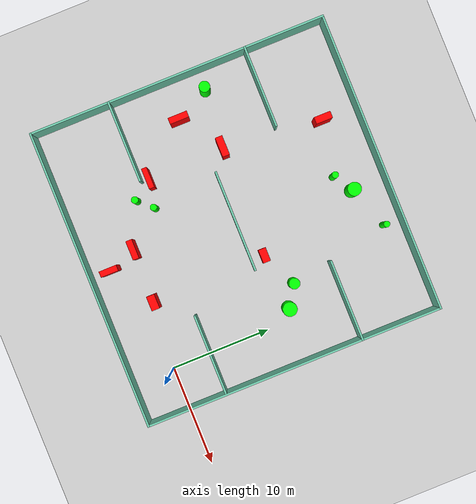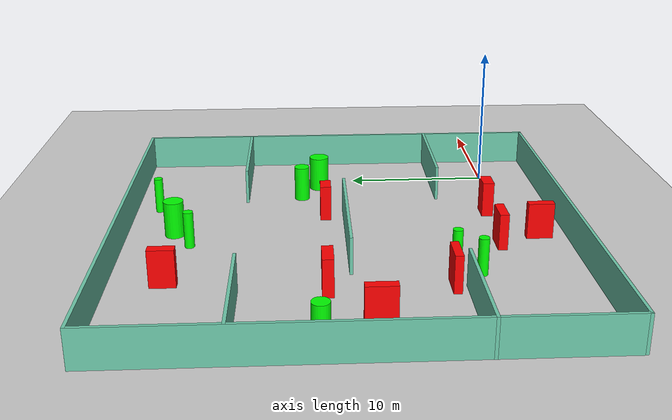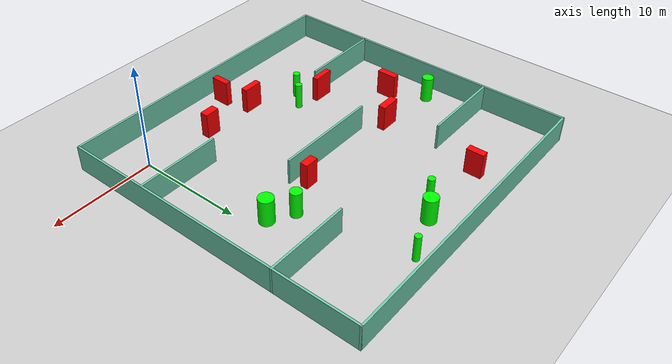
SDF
<sdf version="1.7">
 <world name="default">
  <light name="sun" type="directional">
   <pose>0 0 10 0 -0 0</pose>
   <diffuse>0.8 0.8 0.8 1</diffuse>
   <specular>0.2 0.2 0.2 1</specular>
   <attenuation>
    <range>1000</range>
    <constant>0.9</constant>
    <linear>0.01</linear>
    <quadratic>0.001</quadratic>
   </attenuation>
   <direction>-0.5 0.1 -0.9</direction>
   <spot><inner_angle>0</inner_angle><outer_angle>0</outer_angle><falloff>0</falloff></spot>
  </light>
  <model name="ground_plane">
   <static>1</static>
   <link name="link">
    <collision name="collision">
     <geometry><plane><normal>0 0 1</normal><size>100 100</size></plane></geometry>
     <surface>
      <contact><collide_bitmask>65535</collide_bitmask></contact>
      <friction><ode><mu>100</mu><mu2>50</mu2></ode></friction>
     </surface>
    </collision>
    <visual name="visual">
     <cast_shadows>0</cast_shadows>
     <geometry><plane><normal>0 0 1</normal><size>100 100</size></plane></geometry>
     <material>
      <script><uri>file://media/materials/scripts/gazebo.material</uri><name>Gazebo/Grey</name></script>
     </material>
    </visual>
   </link>
  </model>
  <gravity>0 0 -9.8</gravity>
  <magnetic_field>6e-06 2.3e-05 -4.2e-05</magnetic_field>
  <atmosphere type="adiabatic"/>
  <physics type="ode">
   <max_step_size>0.001</max_step_size>
   <real_time_factor>1</real_time_factor>
   <real_time_update_rate>1000</real_time_update_rate>
  </physics>
  <scene><ambient>0.4 0.4 0.4 1</ambient><background>0.7 0.7 0.7 1</background><shadows>1</shadows></scene>
  <spherical_coordinates>
   <surface_model>EARTH_WGS84</surface_model>
   <latitude_deg>0</latitude_deg>
   <longitude_deg>0</longitude_deg>
   <elevation>0</elevation>
   <heading_deg>0</heading_deg>
  </spherical_coordinates>
  <model name="my_base_walls">
   <link name="Wall_10">
    <collision name="Wall_10_Collision">
     <geometry><box><size>8.2 0.2 2.5</size></box></geometry>
     <pose>0 0 1.25 0 -0 0</pose>
    </collision>
    <visual name="Wall_10_Visual">
     <pose>0 0 1.25 0 -0 0</pose>
     <geometry><box><size>8.2 0.2 2.5</size></box></geometry>
     <material>
      <script><uri>file://media/materials/scripts/gazebo.material</uri><name>Gazebo/Grey</name></script>
      <ambient>0.435294 0.796078 0.67451 1</ambient>
     </material>
     <meta><layer>0</layer></meta>
    </visual>
    <pose>-11 -7 0 0 -0 0</pose>
   </link>
   <link name="Wall_12">
    <collision name="Wall_12_Collision">
     <geometry><box><size>8.2 0.2 2.5</size></box></geometry>
     <pose>0 0 1.25 0 -0 0</pose>
    </collision>
    <visual name="Wall_12_Visual">
     <pose>0 0 1.25 0 -0 0</pose>
     <geometry><box><size>8.2 0.2 2.5</size></box></geometry>
     <material>
      <script><uri>file://media/materials/scripts/gazebo.material</uri><name>Gazebo/Grey</name></script>
      <ambient>0.435294 0.796078 0.67451 1</ambient>
     </material>
     <meta><layer>0</layer></meta>
    </visual>
    <pose>-11 7 0 0 -0 0</pose>
   </link>
   <link name="Wall_14">
    <collision name="Wall_14_Collision">
     <geometry><box><size>8.2 0.2 2.5</size></box></geometry>
     <pose>0 0 1.25 0 -0 0</pose>
    </collision>
    <visual name="Wall_14_Visual">
     <pose>0 0 1.25 0 -0 0</pose>
     <geometry><box><size>8.2 0.2 2.5</size></box></geometry>
     <material>
      <script><uri>file://media/materials/scripts/gazebo.material</uri><name>Gazebo/Grey</name></script>
      <ambient>0.435294 0.796078 0.67451 1</ambient>
     </material>
     <meta><layer>0</layer></meta>
    </visual>
    <pose>11 7 0 0 -0 3.14159</pose>
   </link>
   <link name="Wall_16">
    <collision name="Wall_16_Collision">
     <geometry><box><size>10.2 0.2 2.5</size></box></geometry>
     <pose>0 0 1.25 0 -0 0</pose>
    </collision>
    <visual name="Wall_16_Visual">
     <pose>0 0 1.25 0 -0 0</pose>
     <geometry><box><size>10.2 0.2 2.5</size></box></geometry>
     <material>
      <script><uri>file://media/materials/scripts/gazebo.material</uri><name>Gazebo/Grey</name></script>
      <ambient>0.435294 0.796078 0.67451 1</ambient>
     </material>
     <meta><layer>0</layer></meta>
    </visual>
    <pose>0 0 0 0 -0 3.14159</pose>
   </link>
   <link name="Wall_2">
    <collision name="Wall_2_Collision">
     <geometry><box><size>30.2 0.2 2.5</size></box></geometry>
     <pose>0 0 1.25 0 -0 0</pose>
    </collision>
    <visual name="Wall_2_Visual">
     <pose>0 0 1.25 0 -0 0</pose>
     <geometry><box><size>30.2 0.2 2.5</size></box></geometry>
     <material>
      <script><uri>file://media/materials/scripts/gazebo.material</uri><name>Gazebo/Grey</name></script>
      <ambient>0.435294 0.796078 0.67451 1</ambient>
     </material>
     <meta><layer>0</layer></meta>
    </visual>
    <pose>0 -15 0 0 -0 3.14159</pose>
   </link>
   <link name="Wall_3">
    <collision name="Wall_3_Collision">
     <geometry><box><size>30.2 0.2 2.5</size></box></geometry>
     <pose>0 0 1.25 0 -0 0</pose>
    </collision>
    <visual name="Wall_3_Visual">
     <pose>0 0 1.25 0 -0 0</pose>
     <geometry><box><size>30.2 0.2 2.5</size></box></geometry>
     <material>
      <script><uri>file://media/materials/scripts/gazebo.material</uri><name>Gazebo/Grey</name></script>
      <ambient>0.435294 0.796078 0.67451 1</ambient>
     </material>
     <meta><layer>0</layer></meta>
    </visual>
    <pose>-15 0 0 0 -0 1.5708</pose>
   </link>
   <link name="Wall_4">
    <collision name="Wall_4_Collision">
     <geometry><box><size>30.2 0.2 2.5</size></box></geometry>
     <pose>0 0 1.25 0 -0 0</pose>
    </collision>
    <visual name="Wall_4_Visual">
     <pose>0 0 1.25 0 -0 0</pose>
     <geometry><box><size>30.2 0.2 2.5</size></box></geometry>
     <material>
      <script><uri>file://media/materials/scripts/gazebo.material</uri><name>Gazebo/Grey</name></script>
      <ambient>0.435294 0.796078 0.67451 1</ambient>
     </material>
     <meta><layer>0</layer></meta>
    </visual>
    <pose>0 15 0 0 -0 0</pose>
   </link>
   <link name="Wall_6">
    <collision name="Wall_6_Collision">
     <geometry><box><size>30.2 0.2 2.5</size></box></geometry>
     <pose>0 0 1.25 0 -0 0</pose>
    </collision>
    <visual name="Wall_6_Visual">
     <pose>0 0 1.25 0 -0 0</pose>
     <geometry><box><size>30.2 0.2 2.5</size></box></geometry>
     <material>
      <script><uri>file://media/materials/scripts/gazebo.material</uri><name>Gazebo/Grey</name></script>
      <ambient>0.435294 0.796078 0.67451 1</ambient>
     </material>
     <meta><layer>0</layer></meta>
    </visual>
    <pose>15 0 0 0 -0 1.5708</pose>
   </link>
   <link name="Wall_8">
    <collision name="Wall_8_Collision">
     <geometry><box><size>8.2 0.2 2.5</size></box></geometry>
     <pose>0 0 1.25 0 -0 0</pose>
    </collision>
    <visual name="Wall_8_Visual">
     <pose>0 0 1.25 0 -0 0</pose>
     <geometry><box><size>8.2 0.2 2.5</size></box></geometry>
     <material>
      <script><uri>file://media/materials/scripts/gazebo.material</uri><name>Gazebo/Grey</name></script>
      <ambient>0.435294 0.796078 0.67451 1</ambient>
     </material>
     <meta><layer>0</layer></meta>
    </visual>
    <pose>11 -7 0 0 -0 3.14159</pose>
   </link>
   <static>1</static>
   <pose>-11 11 0 0 -0 0</pose>
  </model>
  <model name="cylinder1">
   <static>1</static>
   <link name="link">
    <inertial>
     <mass>1</mass>
     <inertia><ixx>0.5</ixx><ixy>0</ixy><ixz>0</ixz><iyy>0.5</iyy><iyz>0</iyz><izz>1</izz></inertia>
    </inertial>
    <collision name="collision">
     <geometry><cylinder><radius>0.3329792738780064</radius><length>2.5</length></cylinder></geometry>
    </collision>
    <visual name="visual">
     <geometry><cylinder><radius>0.3329792738780064</radius><length>2.5</length></cylinder></geometry>
     <material>
      <ambient>0 1 0 1</ambient>
      <diffuse>0 1 0 1</diffuse>
      <specular>0.1 0.1 0.1 1</specular>
      <emissive>0 0 0 0</emissive>
     </material>
    </visual>
   </link>
   <pose>-11.517632368103914 21.45031481527162 1.25 0 0 0</pose>
  </model>
  <model name="cylinder2">
   <static>1</static>
   <link name="link">
    <inertial>
     <mass>1</mass>
     <inertia><ixx>0.5</ixx><ixy>0</ixy><ixz>0</ixz><iyy>0.5</iyy><iyz>0</iyz><izz>1</izz></inertia>
    </inertial>
    <collision name="collision">
     <geometry><cylinder><radius>0.6751521307734336</radius><length>2.5</length></cylinder></geometry>
    </collision>
    <visual name="visual">
     <geometry><cylinder><radius>0.6751521307734336</radius><length>2.5</length></cylinder></geometry>
     <material>
      <ambient>0 1 0 1</ambient>
      <diffuse>0 1 0 1</diffuse>
      <specular>0.1 0.1 0.1 1</specular>
      <emissive>0 0 0 0</emissive>
     </material>
    </visual>
   </link>
   <pose>-9.588431915258209 22.652011435274602 1.25 0 0 0</pose>
  </model>
  <model name="cylinder3">
   <static>1</static>
   <link name="link">
    <inertial>
     <mass>1</mass>
     <inertia><ixx>0.5</ixx><ixy>0</ixy><ixz>0</ixz><iyy>0.5</iyy><iyz>0</iyz><izz>1</izz></inertia>
    </inertial>
    <collision name="collision">
     <geometry><cylinder><radius>0.699471255791676</radius><length>2.5</length></cylinder></geometry>
    </collision>
    <visual name="visual">
     <geometry><cylinder><radius>0.699471255791676</radius><length>2.5</length></cylinder></geometry>
     <material>
      <ambient>0 1 0 1</ambient>
      <diffuse>0 1 0 1</diffuse>
      <specular>0.1 0.1 0.1 1</specular>
      <emissive>0 0 0 0</emissive>
     </material>
    </visual>
   </link>
   <pose>-1.2751891856958508 12.667131882498346 1.25 0 0 0</pose>
  </model>
  <model name="cylinder4">
   <static>1</static>
   <link name="link">
    <inertial>
     <mass>1</mass>
     <inertia><ixx>0.5</ixx><ixy>0</ixy><ixz>0</ixz><iyy>0.5</iyy><iyz>0</iyz><izz>1</izz></inertia>
    </inertial>
    <collision name="collision">
     <geometry><cylinder><radius>0.34217672639362795</radius><length>2.5</length></cylinder></geometry>
    </collision>
    <visual name="visual">
     <geometry><cylinder><radius>0.34217672639362795</radius><length>2.5</length></cylinder></geometry>
     <material>
      <ambient>0 1 0 1</ambient>
      <diffuse>0 1 0 1</diffuse>
      <specular>0.1 0.1 0.1 1</specular>
      <emissive>0 0 0 0</emissive>
     </material>
    </visual>
   </link>
   <pose>-16.45659168656255 2.86232007187861 1.25 0 0 0</pose>
  </model>
  <model name="cylinder5">
   <static>1</static>
   <link name="link">
    <inertial>
     <mass>1</mass>
     <inertia><ixx>0.5</ixx><ixy>0</ixy><ixz>0</ixz><iyy>0.5</iyy><iyz>0</iyz><izz>1</izz></inertia>
    </inertial>
    <collision name="collision">
     <geometry><cylinder><radius>0.5421018650868727</radius><length>2.5</length></cylinder></geometry>
    </collision>
    <visual name="visual">
     <geometry><cylinder><radius>0.5421018650868727</radius><length>2.5</length></cylinder></geometry>
     <material>
      <ambient>0 1 0 1</ambient>
      <diffuse>0 1 0 1</diffuse>
      <specular>0.1 0.1 0.1 1</specular>
      <emissive>0 0 0 0</emissive>
     </material>
    </visual>
   </link>
   <pose>-23.973998353300804 13.05136266982258 1.25 0 0 0</pose>
  </model>
  <model name="cylinder6">
   <static>1</static>
   <link name="link">
    <inertial>
     <mass>1</mass>
     <inertia><ixx>0.5</ixx><ixy>0</ixy><ixz>0</ixz><iyy>0.5</iyy><iyz>0</iyz><izz>1</izz></inertia>
    </inertial>
    <collision name="collision">
     <geometry><cylinder><radius>0.3017716513808036</radius><length>2.5</length></cylinder></geometry>
    </collision>
    <visual name="visual">
     <geometry><cylinder><radius>0.3017716513808036</radius><length>2.5</length></cylinder></geometry>
     <material>
      <ambient>0 1 0 1</ambient>
      <diffuse>0 1 0 1</diffuse>
      <specular>0.1 0.1 0.1 1</specular>
      <emissive>0 0 0 0</emissive>
     </material>
    </visual>
   </link>
   <pose>-5.3368454577513695 24.246057571555035 1.25 0 0 0</pose>
  </model>
  <model name="cylinder7">
   <static>1</static>
   <link name="link">
    <inertial>
     <mass>1</mass>
     <inertia><ixx>0.5</ixx><ixy>0</ixy><ixz>0</ixz><iyy>0.5</iyy><iyz>0</iyz><izz>1</izz></inertia>
    </inertial>
    <collision name="collision">
     <geometry><cylinder><radius>0.5401081087952997</radius><length>2.5</length></cylinder></geometry>
    </collision>
    <visual name="visual">
     <geometry><cylinder><radius>0.5401081087952997</radius><length>2.5</length></cylinder></geometry>
     <material>
      <ambient>0 1 0 1</ambient>
      <diffuse>0 1 0 1</diffuse>
      <specular>0.1 0.1 0.1 1</specular>
      <emissive>0 0 0 0</emissive>
     </material>
    </visual>
   </link>
   <pose>-3.3762828604508073 13.974862115669655 1.25 0 0 0</pose>
  </model>
  <model name="cylinder8">
   <static>1</static>
   <link name="link">
    <inertial>
     <mass>1</mass>
     <inertia><ixx>0.5</ixx><ixy>0</ixy><ixz>0</ixz><iyy>0.5</iyy><iyz>0</iyz><izz>1</izz></inertia>
    </inertial>
    <collision name="collision">
     <geometry><cylinder><radius>0.3301861320849065</radius><length>2.5</length></cylinder></geometry>
    </collision>
    <visual name="visual">
     <geometry><cylinder><radius>0.3301861320849065</radius><length>2.5</length></cylinder></geometry>
     <material>
      <ambient>0 1 0 1</ambient>
      <diffuse>0 1 0 1</diffuse>
      <specular>0.1 0.1 0.1 1</specular>
      <emissive>0 0 0 0</emissive>
     </material>
    </visual>
   </link>
   <pose>-15.13815415441986 4.25508562476368 1.25 0 0 0</pose>
  </model>
  <model name="box1">
   <static>1</static>
   <link name="link">
    <inertial>
     <mass>1</mass>
     <inertia><ixx>0.083</ixx><ixy>0</ixy><ixz>0</ixz><iyy>0.083</iyy><iyz>0</iyz><izz>0.083</izz></inertia>
    </inertial>
    <collision name="collision">
     <geometry><box><size>1.4527123430891218 0.7955057562174115 2.5</size></box></geometry>
    </collision>
    <visual name="visual">
     <geometry><box><size>1.4527123430891218 0.7955057562174115 2.5</size></box></geometry>
     <material>
      <ambient>1 0 0 1</ambient>
      <diffuse>1 0 0 1</diffuse>
      <specular>0.1 0.1 0.1 1</specular>
      <emissive>0 0 0 0</emissive>
     </material>
    </visual>
    <sensor name="my_contact" type="contact">
     <contact><collision>box_collision</collision><topic>__default_topic__</topic></contact>
    </sensor>
   </link>
   <pose>-6.75028609785584 0.8061011199548802 1.25 0 0 0</pose>
  </model>
  <model name="box2">
   <static>1</static>
   <link name="link">
    <inertial>
     <mass>1</mass>
     <inertia><ixx>0.083</ixx><ixy>0</ixy><ixz>0</ixz><iyy>0.083</iyy><iyz>0</iyz><izz>0.083</izz></inertia>
    </inertial>
    <collision name="collision">
     <geometry><box><size>0.6779691265069102 1.660318775992659 2.5</size></box></geometry>
    </collision>
    <visual name="visual">
     <geometry><box><size>0.6779691265069102 1.660318775992659 2.5</size></box></geometry>
     <material>
      <ambient>1 0 0 1</ambient>
      <diffuse>1 0 0 1</diffuse>
      <specular>0.1 0.1 0.1 1</specular>
      <emissive>0 0 0 0</emissive>
     </material>
    </visual>
    <sensor name="my_contact" type="contact">
     <contact><collision>box_collision</collision><topic>__default_topic__</topic></contact>
    </sensor>
   </link>
   <pose>-17.005733373927153 22.437373058092938 1.25 0 0 0</pose>
  </model>
  <model name="box3">
   <static>1</static>
   <link name="link">
    <inertial>
     <mass>1</mass>
     <inertia><ixx>0.083</ixx><ixy>0</ixy><ixz>0</ixz><iyy>0.083</iyy><iyz>0</iyz><izz>0.083</izz></inertia>
    </inertial>
    <collision name="collision">
     <geometry><box><size>2.047212994133929 0.5360262914795814 2.5</size></box></geometry>
    </collision>
    <visual name="visual">
     <geometry><box><size>2.047212994133929 0.5360262914795814 2.5</size></box></geometry>
     <material>
      <ambient>1 0 0 1</ambient>
      <diffuse>1 0 0 1</diffuse>
      <specular>0.1 0.1 0.1 1</specular>
      <emissive>0 0 0 0</emissive>
     </material>
    </visual>
    <sensor name="my_contact" type="contact">
     <contact><collision>box_collision</collision><topic>__default_topic__</topic></contact>
    </sensor>
   </link>
   <pose>-17.936152391943672 4.794380725642096 1.25 0 0 0</pose>
  </model>
  <model name="box4">
   <static>1</static>
   <link name="link">
    <inertial>
     <mass>1</mass>
     <inertia><ixx>0.083</ixx><ixy>0</ixy><ixz>0</ixz><iyy>0.083</iyy><iyz>0</iyz><izz>0.083</izz></inertia>
    </inertial>
    <collision name="collision">
     <geometry><box><size>0.6250548438542298 1.9277304837534837 2.5</size></box></geometry>
    </collision>
    <visual name="visual">
     <geometry><box><size>0.6250548438542298 1.9277304837534837 2.5</size></box></geometry>
     <material>
      <ambient>1 0 0 1</ambient>
      <diffuse>1 0 0 1</diffuse>
      <specular>0.1 0.1 0.1 1</specular>
      <emissive>0 0 0 0</emissive>
     </material>
    </visual>
    <sensor name="my_contact" type="contact">
     <contact><collision>box_collision</collision><topic>__default_topic__</topic></contact>
    </sensor>
   </link>
   <pose>-22.17821708754838 9.649312023449859 1.25 0 0 0</pose>
  </model>
  <model name="box5">
   <static>1</static>
   <link name="link">
    <inertial>
     <mass>1</mass>
     <inertia><ixx>0.083</ixx><ixy>0</ixy><ixz>0</ixz><iyy>0.083</iyy><iyz>0</iyz><izz>0.083</izz></inertia>
    </inertial>
    <collision name="collision">
     <geometry><box><size>0.5894834388998851 1.7668134907652688 2.5</size></box></geometry>
    </collision>
    <visual name="visual">
     <geometry><box><size>0.5894834388998851 1.7668134907652688 2.5</size></box></geometry>
     <material>
      <ambient>1 0 0 1</ambient>
      <diffuse>1 0 0 1</diffuse>
      <specular>0.1 0.1 0.1 1</specular>
      <emissive>0 0 0 0</emissive>
     </material>
    </visual>
    <sensor name="my_contact" type="contact">
     <contact><collision>box_collision</collision><topic>__default_topic__</topic></contact>
    </sensor>
   </link>
   <pose>-11.109623341842918 -1.9928092316356247 1.25 0 0 0</pose>
  </model>
  <model name="box6">
   <static>1</static>
   <link name="link">
    <inertial>
     <mass>1</mass>
     <inertia><ixx>0.083</ixx><ixy>0</ixy><ixz>0</ixz><iyy>0.083</iyy><iyz>0</iyz><izz>0.083</izz></inertia>
    </inertial>
    <collision name="collision">
     <geometry><box><size>1.9211410967256928 0.6141941487961184 2.5</size></box></geometry>
    </collision>
    <visual name="visual">
     <geometry><box><size>1.9211410967256928 0.6141941487961184 2.5</size></box></geometry>
     <material>
      <ambient>1 0 0 1</ambient>
      <diffuse>1 0 0 1</diffuse>
      <specular>0.1 0.1 0.1 1</specular>
      <emissive>0 0 0 0</emissive>
     </material>
    </visual>
    <sensor name="my_contact" type="contact">
     <contact><collision>box_collision</collision><topic>__default_topic__</topic></contact>
    </sensor>
   </link>
   <pose>-12.156771054586407 0.8693771359553155 1.25 0 0 0</pose>
  </model>
  <model name="box7">
   <static>1</static>
   <link name="link">
    <inertial>
     <mass>1</mass>
     <inertia><ixx>0.083</ixx><ixy>0</ixy><ixz>0</ixz><iyy>0.083</iyy><iyz>0</iyz><izz>0.083</izz></inertia>
    </inertial>
    <collision name="collision">
     <geometry><box><size>1.9506983616372828 0.716606376631564 2.5</size></box></geometry>
    </collision>
    <visual name="visual">
     <geometry><box><size>1.9506983616372828 0.716606376631564 2.5</size></box></geometry>
     <material>
      <ambient>1 0 0 1</ambient>
      <diffuse>1 0 0 1</diffuse>
      <specular>0.1 0.1 0.1 1</specular>
      <emissive>0 0 0 0</emissive>
     </material>
    </visual>
    <sensor name="my_contact" type="contact">
     <contact><collision>box_collision</collision><topic>__default_topic__</topic></contact>
    </sensor>
   </link>
   <pose>-18.07414374652993 12.51030216388121 1.25 0 0 0</pose>
  </model>
  <model name="box8">
   <static>1</static>
   <link name="link">
    <inertial>
     <mass>1</mass>
     <inertia><ixx>0.083</ixx><ixy>0</ixy><ixz>0</ixz><iyy>0.083</iyy><iyz>0</iyz><izz>0.083</izz></inertia>
    </inertial>
    <collision name="collision">
     <geometry><box><size>1.351448791047232 0.746955356779514 2.5</size></box></geometry>
    </collision>
    <visual name="visual">
     <geometry><box><size>1.351448791047232 0.746955356779514 2.5</size></box></geometry>
     <material>
      <ambient>1 0 0 1</ambient>
      <diffuse>1 0 0 1</diffuse>
      <specular>0.1 0.1 0.1 1</specular>
      <emissive>0 0 0 0</emissive>
     </material>
    </visual>
    <sensor name="my_contact" type="contact">
     <contact><collision>box_collision</collision><topic>__default_topic__</topic></contact>
    </sensor>
   </link>
   <pose>-6.94439436164172 12.334109765134965 1.25 0 0 0</pose>
  </model>
 </world>
</sdf>
